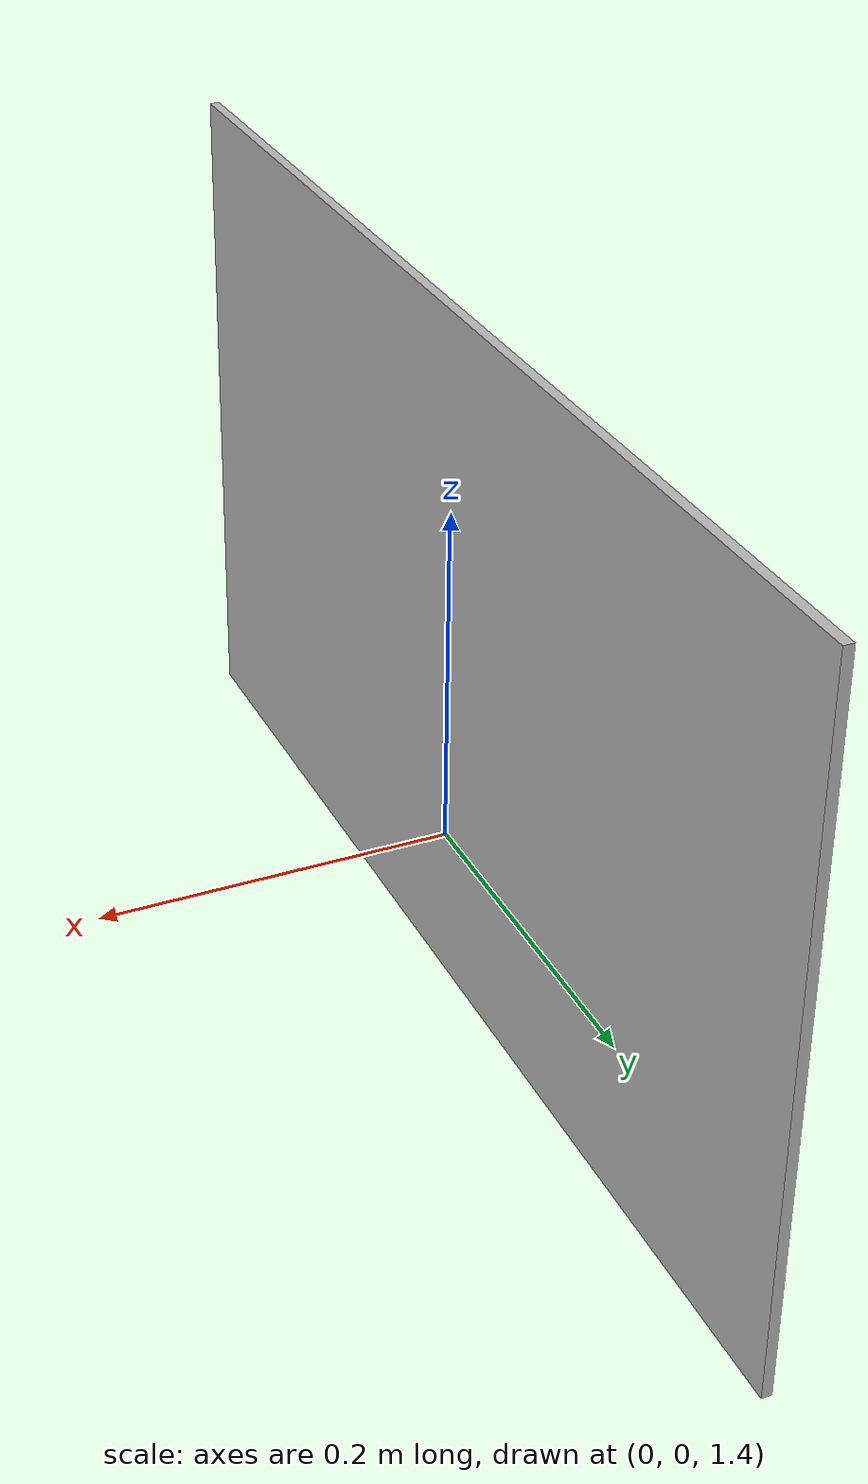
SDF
<?xml version="1.0"?>
<sdf version="1.6">
  <model name="screen">
    <pose>0 0 0.01 0 0 0</pose>
    <static>true</static>
    <link name="link">

      <!-- Visualización del modelo -->
      <visual name="visual">
        <geometry>
          <mesh>
            <uri>model://screen/meshes/screen.dae</uri>
            <scale>1 1 1</scale>
          </mesh>
        </geometry>
      </visual>

      <!-- Colisión usando el mismo modelo DAE -->

    </link>
  </model>
</sdf>
